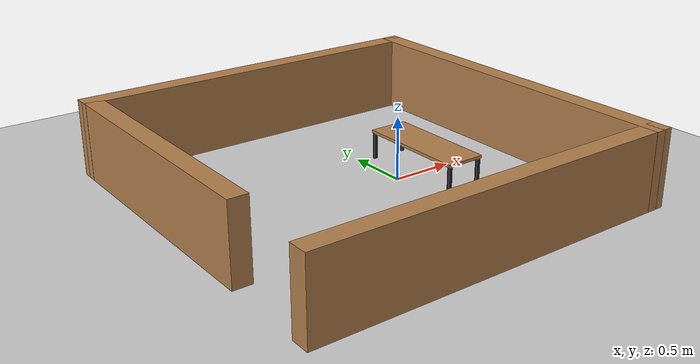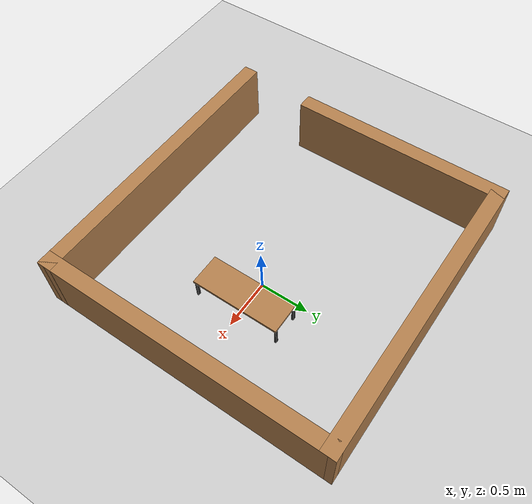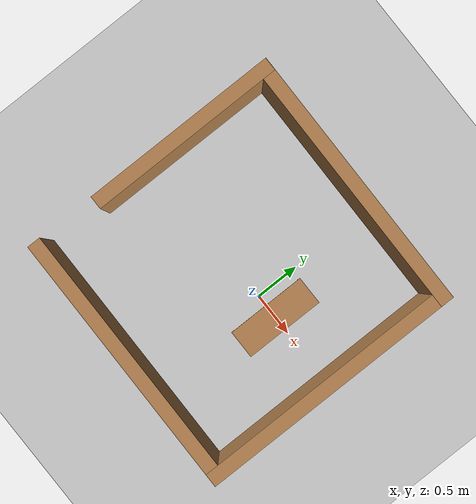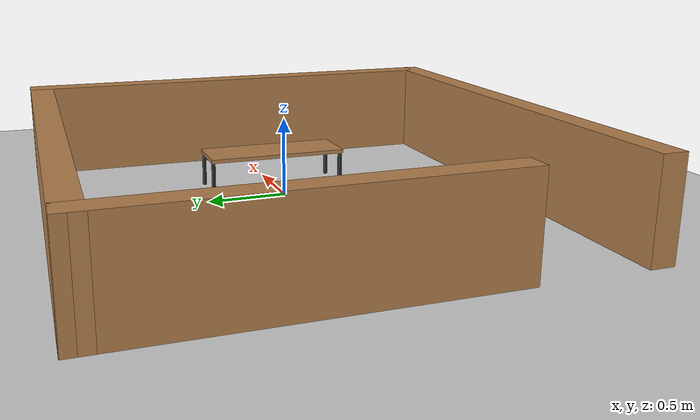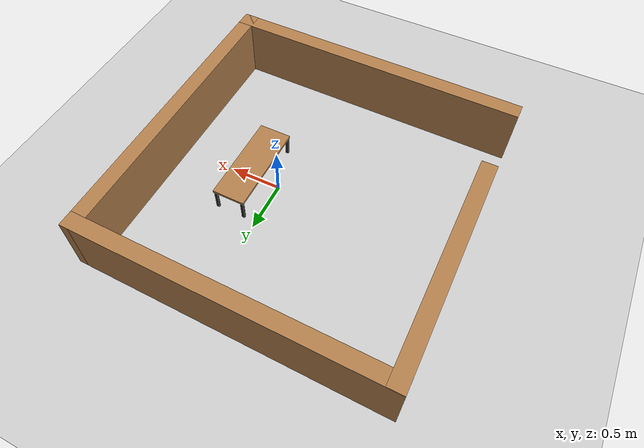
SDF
<?xml version="1.0"?>
<sdf version="1.6">
  <world name="default">
    <!-- A global light source -->
    <include>
      <uri>model://sun</uri>
    </include>
    <!-- A ground plane -->
    <include>
      <uri>model://ground_plane</uri>
    </include>

    <include>
      <uri>model://desk</uri>
    </include>

    <include>
      <uri>model://room</uri>
    </include>

    <gui fullscreen='0'>
        <camera name='user_camera'>
          <pose> -0.845601 -4.259242 11.936534 0.000013 1.537797 -3.136549</pose>
          <view_controller>orbit</view_controller>
        </camera>
    </gui>

    <physics type="ode">
        <real_time_update_rate>1000.0</real_time_update_rate>
        <max_step_size>0.001</max_step_size>
        <real_time_factor>1</real_time_factor>
        <ode>
          <solver>
            <type>quick</type>
            <iters>150</iters>
            <precon_iters>0</precon_iters>
            <sor>1.400000</sor>
            <use_dynamic_moi_rescaling>1</use_dynamic_moi_rescaling>
          </solver>
        </ode>
    </physics>
  </world>
</sdf>

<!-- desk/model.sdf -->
<sdf version='1.6'>
    <model name='desk'>
      <pose frame=''>-0.050799 0 0 0 0 0</pose>
      <static>true</static>
      <allow_auto_disable>1</allow_auto_disable>

      <link name='desk_link'>
        <pose>0.32 -0.0015 0.22800 0 0 0</pose>
          <inertial>
            <pose frame=''>0 0 0 0 0 0</pose>
            <mass>30</mass>
            <inertia>
              <ixx>1</ixx>
              <ixy>0</ixy>
              <ixz>0</ixz>
              <iyy>1</iyy>
              <iyz>0</iyz>
              <izz>1</izz>
            </inertia>
          </inertial>

          <gravity>1</gravity>
          <velocity_decay/>
          <self_collide>1</self_collide>
          <enable_wind>0</enable_wind>
          <kinematic>0</kinematic>

          <visual name='desk_visual'>
            <pose frame=''>0 0 0 0 0 0</pose>
            <geometry>
                <box>
                  <size> 0.32 0.9 0.024</size>
                </box>
            </geometry>
            <material>
              <script>
                <name>Gazebo/Wood</name>
                <uri>file://media/materials/scripts/gazebo.material</uri>
              </script>
              <shader type='pixel'/>
            </material>
            <transparency>0</transparency>
            <cast_shadows>1</cast_shadows>
          </visual>

          <collision name="desk_collision">
            <pose frame=''>0 0 0 0 0 0</pose>
            <geometry>
              <box>
                <size> 0.32 0.9 0.024</size>
              </box>
            </geometry>
          </collision>
      </link>

      <link name='leg_link1'>
        <pose frame=''>0.456 0.435 0.11 0 0 0</pose>
          <inertial>
            <pose frame=''>0 0 0 0 0 0</pose>
            <mass>5</mass>
            <inertia>
              <ixx>1</ixx>
              <ixy>0</ixy>
              <ixz>0</ixz>
              <iyy>1</iyy>
              <iyz>0</iyz>
              <izz>1</izz>
            </inertia>
          </inertial>

          <gravity>1</gravity>
          <velocity_decay/>
          <self_collide>1</self_collide>
          <enable_wind>0</enable_wind>
          <kinematic>0</kinematic>

          <visual name='leg_visual1'>
            <pose frame=''>0 0 0 0 0 0</pose>
            <geometry>
                <box>
                  <size> 0.03 0.02 0.22</size>
                </box>
            </geometry>
            <material>
              <script>
                <name>Gazebo/FlatBlack</name>
                <uri>file://media/materials/scripts/gazebo.material</uri>
              </script>
              <shader type='pixel'/>
            </material>
            <transparency>0</transparency>
            <cast_shadows>1</cast_shadows>
          </visual>

          <collision name="leg_collision1">
            <pose frame=''>0 0 0 0 0 0</pose>
            <geometry>
              <box>
                <size> 0.03 0.02 0.22</size>
              </box>
            </geometry>
          </collision>
      </link>

      <link name='leg_link2'>
        <pose frame=''>0.456 -0.435 0.11 0 0 0</pose>
          <inertial>
            <pose frame=''>0 0 0 0 0 0</pose>
            <mass>5</mass>
            <inertia>
              <ixx>1</ixx>
              <ixy>0</ixy>
              <ixz>0</ixz>
              <iyy>1</iyy>
              <iyz>0</iyz>
              <izz>1</izz>
            </inertia>
          </inertial>

          <gravity>1</gravity>
          <velocity_decay/>
          <self_collide>1</self_collide>
          <enable_wind>0</enable_wind>
          <kinematic>0</kinematic>

          <visual name='leg_visual2'>
            <pose frame=''>0 0 0 0 0 0</pose>
            <geometry>
                <box>
                  <size> 0.03 0.02 0.22</size>
                </box>
            </geometry>
            <material>
              <script>
                <name>Gazebo/FlatBlack</name>
                <uri>file://media/materials/scripts/gazebo.material</uri>
              </script>
              <shader type='pixel'/>
            </material>
            <transparency>0</transparency>
            <cast_shadows>1</cast_shadows>
          </visual>

          <collision name="leg_collision2">
            <pose frame=''>0 0 0 0 0 0</pose>
            <geometry>
              <box>
                <size> 0.03 0.02 0.22</size>
              </box>
            </geometry>
          </collision>
      </link>

      <link name='leg_link3'>
        <pose frame=''>0.182 -0.435 0.11 0 0 0</pose>
          <inertial>
            <pose frame=''>0 0 0 0 0 0</pose>
            <mass>5</mass>
            <inertia>
              <ixx>1</ixx>
              <ixy>0</ixy>
              <ixz>0</ixz>
              <iyy>1</iyy>
              <iyz>0</iyz>
              <izz>1</izz>
            </inertia>
          </inertial>

          <gravity>1</gravity>
          <velocity_decay/>
          <self_collide>1</self_collide>
          <enable_wind>0</enable_wind>
          <kinematic>0</kinematic>

          <visual name='leg_visual3'>
            <pose frame=''>0 0 0 0 0 0</pose>
            <geometry>
                <box>
                  <size> 0.03 0.02 0.22</size>
                </box>
            </geometry>
            <material>
              <script>
                <name>Gazebo/FlatBlack</name>
                <uri>file://media/materials/scripts/gazebo.material</uri>
              </script>
              <shader type='pixel'/>
            </material>
            <transparency>0</transparency>
            <cast_shadows>1</cast_shadows>
          </visual>

          <collision name="leg_collision3">
            <pose frame=''>0 0 0 0 0 0</pose>
            <geometry>
              <box>
                <size> 0.03 0.02 0.22</size>
              </box>
            </geometry>
          </collision>
      </link>

      <link name='leg_link4'>
        <pose frame=''>0.182 0.435 0.11 0 0 0</pose>
          <inertial>
            <pose frame=''>0 0 0 0 0 0</pose>
            <mass>5</mass>
            <inertia>
              <ixx>1</ixx>
              <ixy>0</ixy>
              <ixz>0</ixz>
              <iyy>1</iyy>
              <iyz>0</iyz>
              <izz>1</izz>
            </inertia>
          </inertial>

          <gravity>1</gravity>
          <velocity_decay/>
          <self_collide>1</self_collide>
          <enable_wind>0</enable_wind>
          <kinematic>0</kinematic>

          <visual name='leg_visual4'>
            <pose frame=''>0 0 0 0 0 0</pose>
            <geometry>
                <box>
                  <size> 0.03 0.02 0.22</size>
                </box>
            </geometry>
            <material>
              <script>
                <name>Gazebo/FlatBlack</name>
                <uri>file://media/materials/scripts/gazebo.material</uri>
              </script>
              <shader type='pixel'/>
            </material>
            <transparency>0</transparency>
            <cast_shadows>1</cast_shadows>
          </visual>

          <collision name="leg_collision4">
            <pose frame=''>0 0 0 0 0 0</pose>
            <geometry>
              <box>
                <size> 0.03 0.02 0.22</size>
              </box>
            </geometry>
          </collision>
      </link>

    </model>
  </sdf>

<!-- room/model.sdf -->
<sdf version='1.7'>
  <model name='room'>
    <pose>-0.320612 0.414660 0 0 -0 0</pose>
    <link name='Wall_0'>
      <collision name='Wall_0_Collision'>
        <geometry>
          <box>
            <size>2.2 0.15 0.6</size>
          </box>
        </geometry>
        <pose>0 0 0.3 0 -0 0</pose>
      </collision>
      <visual name='Wall_0_Visual'>
        <pose>0 0 0.3 0 -0 0</pose>
        <geometry>
          <box>
            <size>2.2 0.15 0.6</size>
          </box>
        </geometry>
        <material>
          <script>
            <uri>file://media/materials/scripts/gazebo.material</uri>
            <name>Gazebo/Wood</name>
          </script>
          <ambient>1 1 1 1</ambient>
        </material>
        <meta>
          <layer>0</layer>
        </meta>
      </visual>
      <pose>-1.42497 -0 0 0 -0 1.57082</pose>
    </link>
    <link name='Wall_1'>
      <collision name='Wall_1_Collision'>
        <geometry>
          <box>
            <size>3 0.15 0.6</size>
          </box>
        </geometry>
        <pose>0 0 0.3 0 -0 0</pose>
      </collision>
      <visual name='Wall_1_Visual'>
        <pose>0 0 0.3 0 -0 0</pose>
        <geometry>
          <box>
            <size>3 0.15 0.6</size>
          </box>
        </geometry>
        <material>
          <script>
            <uri>file://media/materials/scripts/gazebo.material</uri>
            <name>Gazebo/Wood</name>
          </script>
          <ambient>1 1 1 1</ambient>
        </material>
        <meta>
          <layer>0</layer>
        </meta>
      </visual>
      <pose>-3.6e-05 1.01769 0 0 -0 -0.007067</pose>
    </link>
    <link name='Wall_2'>
      <collision name='Wall_2_Collision'>
        <geometry>
          <box>
            <size>3 0.15 0.6</size>
          </box>
        </geometry>
        <pose>0 0 0.3 0 -0 0</pose>
      </collision>
      <visual name='Wall_2_Visual'>
        <pose>0 0 0.3 0 -0 0</pose>
        <geometry>
          <box>
            <size>3 0.15 0.6</size>
          </box>
        </geometry>
        <material>
          <script>
            <uri>file://media/materials/scripts/gazebo.material</uri>
            <name>Gazebo/Wood</name>
          </script>
          <ambient>1 1 1 1</ambient>
        </material>
        <meta>
          <layer>0</layer>
        </meta>
      </visual>
      <pose>1.42496 -0.417306 0 0 -0 -1.57077</pose>
    </link>
    <link name='Wall_3'>
      <collision name='Wall_3_Collision'>
        <geometry>
          <box>
            <size>3 0.15 0.6</size>
          </box>
        </geometry>
        <pose>0 0 0.3 0 -0 0</pose>
      </collision>
      <visual name='Wall_3_Visual'>
        <pose>0 0 0.3 0 -0 0</pose>
        <geometry>
          <box>
            <size>3 0.15 0.6</size>
          </box>
        </geometry>
        <material>
          <script>
            <uri>file://media/materials/scripts/gazebo.material</uri>
            <name>Gazebo/Wood</name>
          </script>
          <ambient>1 1 1 1</ambient>
        </material>
        <meta>
          <layer>0</layer>
        </meta>
      </visual>
      <pose>3.5e-05 -1.83217 0 0 -0 3.13453</pose>
    </link>
    <static>1</static>
  </model>
</sdf>
